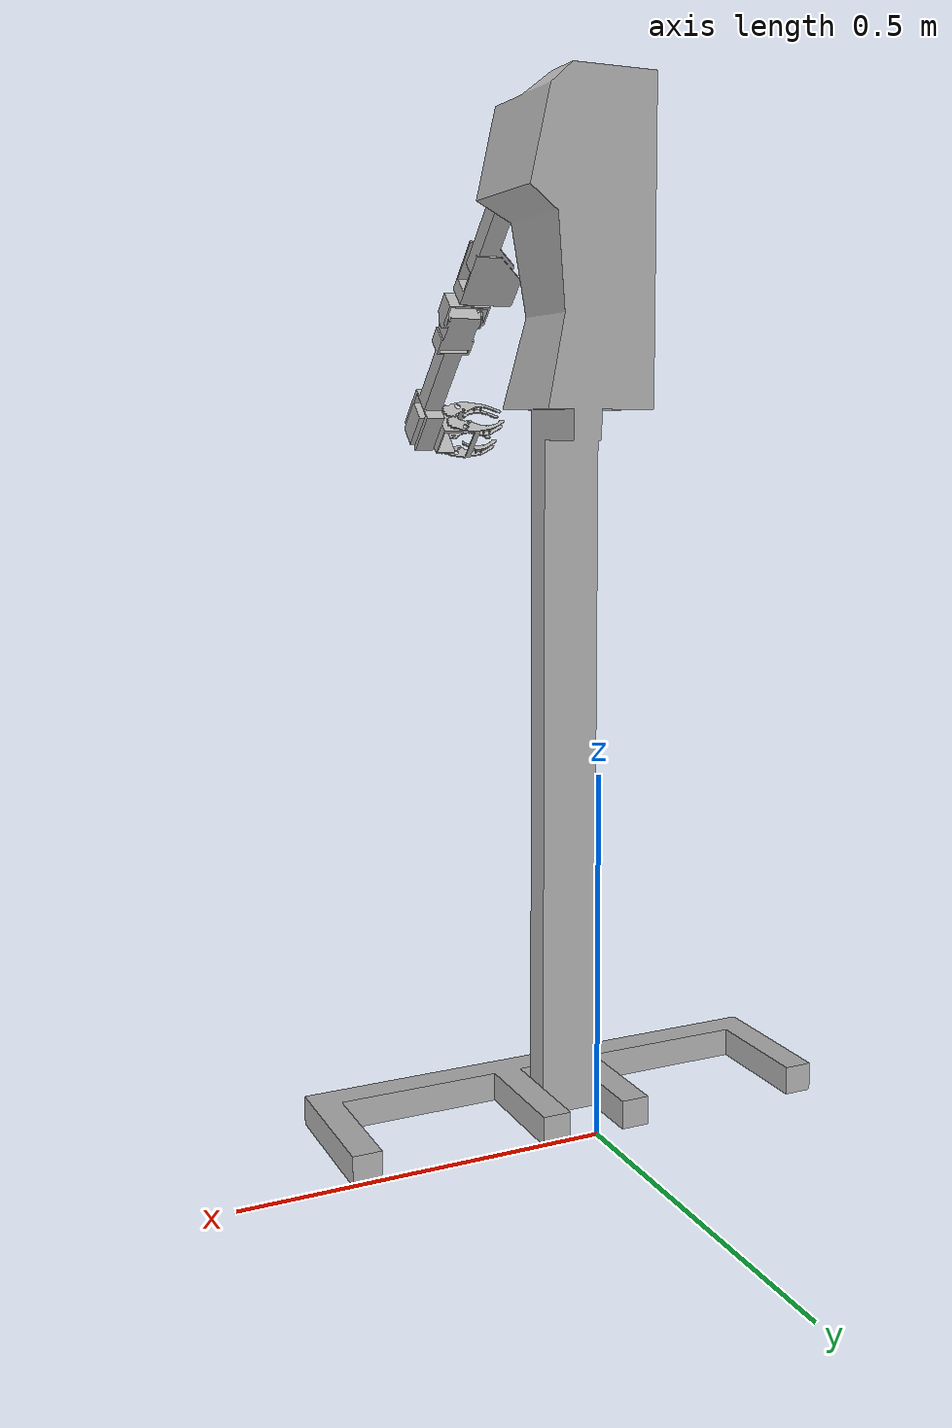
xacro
<?xml version="1.0" ?>
<robot name="right_robot" xmlns:xacro="http://www.ros.org/wiki/xacro">

<xacro:include filename="$(find right_robot_description)/urdf/materials.xacro" />
<xacro:include filename="$(find right_robot_description)/urdf/right_robot.trans" />
<xacro:include filename="$(find right_robot_description)/urdf/right_robot.gazebo" />
<link name="base_link">
  <inertial>
    <origin xyz="-0.0004646057468762272 -0.08847946297090703 0.8657775415224737" rpy="0 0 0"/>
    <mass value="111.29146544261583"/>
    <inertia ixx="26.70124" iyy="27.402518" izz="1.220807" ixy="0.005107" iyz="-1.09666" ixz="-0.009504"/>
  </inertial>
  <visual>
    <origin xyz="0 0 0" rpy="0 0 0"/>
    <geometry>
      <mesh filename="file://$(find right_robot_description)/meshes/base_link.stl" scale="0.001 0.001 0.001"/>
    </geometry>
    <material name="silver"/>
  </visual>
  <collision>
    <origin xyz="0 0 0" rpy="0 0 0"/>
    <geometry>
      <mesh filename="file://$(find right_robot_description)/meshes/base_link.stl" scale="0.001 0.001 0.001"/>
    </geometry>
  </collision>
</link>

<link name="right_shoulder">
  <inertial>
    <origin xyz="4.7309625928141343e-20 -0.027330882089484587 4.440892098500626e-16" rpy="0 0 0"/>
    <mass value="1.4666981122291527"/>
    <inertia ixx="0.001727" iyy="0.001578" izz="0.00186" ixy="0.0" iyz="0.0" ixz="0.0"/>
  </inertial>
  <visual>
    <origin xyz="-0.0 0.19651 -1.3165" rpy="0 0 0"/>
    <geometry>
      <mesh filename="file://$(find right_robot_description)/meshes/shoulder_1.stl" scale="0.001 0.001 0.001"/>
    </geometry>
    <material name="silver"/>
  </visual>
  <collision>
    <origin xyz="-0.0 0.19651 -1.3165" rpy="0 0 0"/>
    <geometry>
      <mesh filename="file://$(find right_robot_description)/meshes/shoulder_1.stl" scale="0.001 0.001 0.001"/>
    </geometry>
  </collision>
</link>

<link name="right_upper_arm">
  <inertial>
    <origin xyz="-0.00826042671284587 -0.1430705592158683 4.440892098500626e-16" rpy="0 0 0"/>
    <mass value="1.9288762922196265"/>
    <inertia ixx="0.008968" iyy="0.001022" izz="0.009575" ixy="-0.001101" iyz="-0.0" ixz="0.0"/>
  </inertial>
  <visual>
    <origin xyz="-0.0 0.26451 -1.3165" rpy="0 0 0"/>
    <geometry>
      <mesh filename="file://$(find right_robot_description)/meshes/upper_arm_1.stl" scale="0.001 0.001 0.001"/>
    </geometry>
    <material name="silver"/>
  </visual>
  <collision>
    <origin xyz="-0.0 0.26451 -1.3165" rpy="0 0 0"/>
    <geometry>
      <mesh filename="file://$(find right_robot_description)/meshes/upper_arm_1.stl" scale="0.001 0.001 0.001"/>
    </geometry>
  </collision>
</link>

<link name="right_elbow">
  <inertial>
    <origin xyz="1.543004640454404e-17 -0.01796725150273404 9.037215420448774e-14" rpy="0 0 0"/>
    <mass value="0.14390404221962724"/>
    <inertia ixx="4.5e-05" iyy="0.000104" izz="0.000129" ixy="0.0" iyz="-0.0" ixz="0.0"/>
  </inertial>
  <visual>
    <origin xyz="-0.0 0.49951 -1.3165" rpy="0 0 0"/>
    <geometry>
      <mesh filename="file://$(find right_robot_description)/meshes/elbow_1.stl" scale="0.001 0.001 0.001"/>
    </geometry>
    <material name="silver"/>
  </visual>
  <collision>
    <origin xyz="-0.0 0.49951 -1.3165" rpy="0 0 0"/>
    <geometry>
      <mesh filename="file://$(find right_robot_description)/meshes/elbow_1.stl" scale="0.001 0.001 0.001"/>
    </geometry>
  </collision>
</link>

<link name="right_forearm">
  <inertial>
    <origin xyz="4.4535538605346875e-18 -0.09502500346990561 0.0" rpy="0 0 0"/>
    <mass value="2.0132130797778944"/>
    <inertia ixx="0.0118" iyy="0.000662" izz="0.0117" ixy="0.0" iyz="0.0" ixz="0.0"/>
  </inertial>
  <visual>
    <origin xyz="-0.0 0.53851 -1.3165" rpy="0 0 0"/>
    <geometry>
      <mesh filename="file://$(find right_robot_description)/meshes/forearm_1.stl" scale="0.001 0.001 0.001"/>
    </geometry>
    <material name="silver"/>
  </visual>
  <collision>
    <origin xyz="-0.0 0.53851 -1.3165" rpy="0 0 0"/>
    <geometry>
      <mesh filename="file://$(find right_robot_description)/meshes/forearm_1.stl" scale="0.001 0.001 0.001"/>
    </geometry>
  </collision>
</link>

<link name="right_wrist">
  <inertial>
    <origin xyz="-0.00022630011389284735 0.014473720665365675 5.773159728050814e-15" rpy="0 0 0"/>
    <mass value="0.7029015023306802"/>
    <inertia ixx="0.00029" iyy="0.000174" izz="0.000304" ixy="-2e-06" iyz="0.0" ixz="0.0"/>
  </inertial>
  <visual>
    <origin xyz="-0.0 0.77851 -1.3165" rpy="0 0 0"/>
    <geometry>
      <mesh filename="file://$(find right_robot_description)/meshes/wrist_1.stl" scale="0.001 0.001 0.001"/>
    </geometry>
    <material name="silver"/>
  </visual>
  <collision>
    <origin xyz="-0.0 0.77851 -1.3165" rpy="0 0 0"/>
    <geometry>
      <mesh filename="file://$(find right_robot_description)/meshes/wrist_1.stl" scale="0.001 0.001 0.001"/>
    </geometry>
  </collision>
</link>

<link name="right_hand">
  <inertial>
    <origin xyz="-0.015812535108692863 -2.220446049250313e-16 0.0" rpy="0 0 0"/>
    <mass value="0.182460952097612"/>
    <inertia ixx="0.000135" iyy="7e-05" izz="0.000108" ixy="0.0" iyz="-0.0" ixz="0.0"/>
  </inertial>
  <visual>
    <origin xyz="0.023 0.77851 -1.3165" rpy="0 0 0"/>
    <geometry>
      <mesh filename="file://$(find right_robot_description)/meshes/hand_1.stl" scale="0.001 0.001 0.001"/>
    </geometry>
    <material name="silver"/>
  </visual>
  <collision>
    <origin xyz="0.023 0.77851 -1.3165" rpy="0 0 0"/>
    <geometry>
      <mesh filename="file://$(find right_robot_description)/meshes/hand_1.stl" scale="0.001 0.001 0.001"/>
    </geometry>
  </collision>
</link>

<link name="right_upper_clamp">
  <inertial>
    <origin xyz="-0.030948116472503368 -1.1102230246251565e-16 -0.006439580407853418" rpy="0 0 0"/>
    <mass value="0.07927921862621917"/>
    <inertia ixx="6e-05" iyy="6.1e-05" izz="0.000112" ixy="-0.0" iyz="0.0" ixz="-5e-06"/>
  </inertial>
  <visual>
    <origin xyz="0.048 0.77851 -1.3025" rpy="0 0 0"/>
    <geometry>
      <mesh filename="file://$(find right_robot_description)/meshes/upper_clamp_1.stl" scale="0.001 0.001 0.001"/>
    </geometry>
    <material name="silver"/>
  </visual>
  <collision>
    <origin xyz="0.048 0.77851 -1.3025" rpy="0 0 0"/>
    <geometry>
      <mesh filename="file://$(find right_robot_description)/meshes/upper_clamp_1.stl" scale="0.001 0.001 0.001"/>
    </geometry>
  </collision>
</link>

<link name="right_lower_clamp">
  <inertial>
    <origin xyz="-0.030392197221724593 -1.1102230246251565e-16 0.007533311927162778" rpy="0 0 0"/>
    <mass value="0.07734674619028083"/>
    <inertia ixx="5.9e-05" iyy="5.9e-05" izz="0.000108" ixy="0.0" iyz="0.0" ixz="6e-06"/>
  </inertial>
  <visual>
    <origin xyz="0.048 0.77851 -1.3305" rpy="0 0 0"/>
    <geometry>
      <mesh filename="file://$(find right_robot_description)/meshes/lower_clamp_1.stl" scale="0.001 0.001 0.001"/>
    </geometry>
    <material name="silver"/>
  </visual>
  <collision>
    <origin xyz="0.048 0.77851 -1.3305" rpy="0 0 0"/>
    <geometry>
      <mesh filename="file://$(find right_robot_description)/meshes/lower_clamp_1.stl" scale="0.001 0.001 0.001"/>
    </geometry>
  </collision>
</link>

<joint name="RJ1" type="revolute">
  <origin xyz="0.0 -0.19651 1.3165" rpy="0 0 0"/>
  <parent link="base_link"/>
  <child link="right_shoulder"/>
  <axis xyz="0.0 -1.0 0.0"/>
  <limit upper="3.141593" lower="0.0" effort="100" velocity="100"/>
</joint>

<joint name="RJ2" type="revolute">
  <origin xyz="0.0 -0.068 0.0" rpy="-1.570796 0 0"/>
  <parent link="right_shoulder"/>
  <child link="right_upper_arm"/>
  <axis xyz="1.0 0.0 0.0"/>
  <limit upper="3.141593" lower="1.570796" effort="100" velocity="100"/>
</joint>

<joint name="RJ3" type="revolute">
  <origin xyz="0.0 -0.235 0.0" rpy="0 0 0"/>
  <parent link="right_upper_arm"/>
  <child link="right_elbow"/>
  <axis xyz="0.0 -1.0 0.0"/>
  <limit upper="3.141593" lower="0.0" effort="100" velocity="100"/>
</joint>

<joint name="RJ4" type="revolute">
  <origin xyz="0.0 -0.039 0.0" rpy="0 0 0"/>
  <parent link="right_elbow"/>
  <child link="right_forearm"/>
  <axis xyz="1.0 0.0 0.0"/>
  <limit upper="2.268928" lower="0.0" effort="100" velocity="100"/>
</joint>

<joint name="RJ5" type="revolute">
  <origin xyz="0.0 -0.24 0.0" rpy="0 0 0"/>
  <parent link="right_forearm"/>
  <child link="right_wrist"/>
  <axis xyz="-0.0 0.0 1.0"/>
  <limit upper="3.141593" lower="0.0" effort="100" velocity="100"/>
</joint>

<joint name="RJ6" type="revolute">
  <origin xyz="-0.023 0.0 0.0" rpy="0 0 0"/>
  <parent link="right_wrist"/>
  <child link="right_hand"/>
  <axis xyz="-1.0 -0.0 -0.0"/>
  <limit upper="3.141593" lower="0.0" effort="100" velocity="100"/>
</joint>

<joint name="RJ7" type="revolute">
  <origin xyz="-0.025 0.0 -0.014" rpy="0 0 0"/>
  <parent link="right_hand"/>
  <child link="right_upper_clamp"/>
  <axis xyz="0.0 -1.0 -0.0"/>
  <limit upper="1.22173" lower="0.0" effort="100" velocity="100"/>
</joint>

<joint name="RJ8" type="revolute">
  <origin xyz="-0.025 0.0 0.014" rpy="0 0 0"/>
  <parent link="right_hand"/>
  <child link="right_lower_clamp"/>
  <axis xyz="-0.0 1.0 0.0"/>
  <limit upper="1.22173" lower="0.0" effort="100" velocity="100"/>
  <mimic joint="RJ7" multiplier="1" offset="0"/>
</joint>

</robot>

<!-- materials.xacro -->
<robot name="right_robot" xmlns:xacro="http://www.ros.org/wiki/xacro" >

<material name="silver">
  <color rgba="0.700 0.700 0.700 1.000"/>
</material>

</robot>

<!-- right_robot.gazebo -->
<robot name="right_robot" xmlns:xacro="http://www.ros.org/wiki/xacro" >

<xacro:property name="body_color" value="Gazebo/Silver" />

<gazebo>
  <plugin name="control" filename="libgazebo_ros_control.so"/>
</gazebo>
<gazebo reference="base_link">
  <material>${body_color}</material>
  <mu1>0.2</mu1>
  <mu2>0.2</mu2>
  <self_collide>true</self_collide>
  <gravity>true</gravity>
</gazebo>

<gazebo reference="shoulder_1">
  <material>${body_color}</material>
  <mu1>0.2</mu1>
  <mu2>0.2</mu2>
  <self_collide>true</self_collide>
</gazebo>

<gazebo reference="upper_arm_1">
  <material>${body_color}</material>
  <mu1>0.2</mu1>
  <mu2>0.2</mu2>
  <self_collide>true</self_collide>
</gazebo>

<gazebo reference="elbow_1">
  <material>${body_color}</material>
  <mu1>0.2</mu1>
  <mu2>0.2</mu2>
  <self_collide>true</self_collide>
</gazebo>

<gazebo reference="forearm_1">
  <material>${body_color}</material>
  <mu1>0.2</mu1>
  <mu2>0.2</mu2>
  <self_collide>true</self_collide>
</gazebo>

<gazebo reference="wrist_1">
  <material>${body_color}</material>
  <mu1>0.2</mu1>
  <mu2>0.2</mu2>
  <self_collide>true</self_collide>
</gazebo>

<gazebo reference="hand_1">
  <material>${body_color}</material>
  <mu1>0.2</mu1>
  <mu2>0.2</mu2>
  <self_collide>true</self_collide>
</gazebo>

<gazebo reference="upper_clamp_1">
  <material>${body_color}</material>
  <mu1>0.2</mu1>
  <mu2>0.2</mu2>
  <self_collide>true</self_collide>
</gazebo>

<gazebo reference="lower_clamp_1">
  <material>${body_color}</material>
  <mu1>0.2</mu1>
  <mu2>0.2</mu2>
  <self_collide>true</self_collide>
</gazebo>

</robot>
